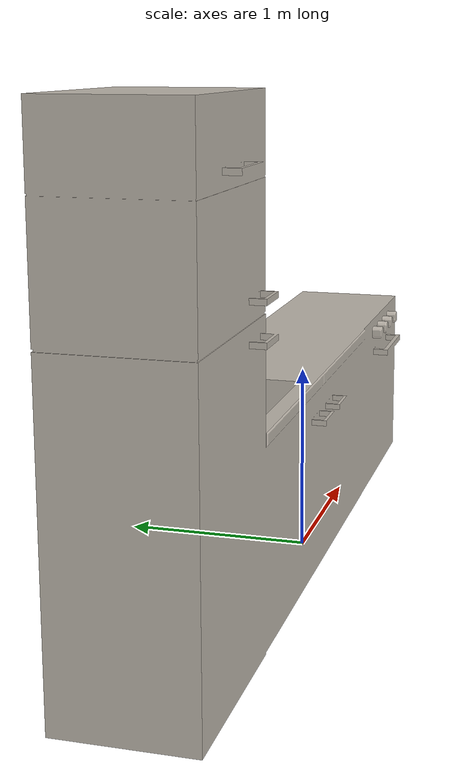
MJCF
<mujoco model="Counters">
  <default>
    <default class="visual">
      <geom group="2" type="mesh" contype="0" conaffinity="0"/>
    </default>
    <default class="collision">
      <geom group="3"/>
    </default>
  </default>
  <asset>
    <texture type="2d" name="texture" file="texture.png"/>
    <material name="Material.004" texture="texture" specular="0.5" shininess="0.25"/>
    <mesh file="Counters.obj"/>
    <mesh file="Counters_coll.obj"/>
  </asset>
  <worldbody>
    <body name="Counters">
      <inertial pos="0 0 0" mass="0.01" diaginertia="0 0 0"/>
      <geom material="Material.004" mesh="Counters" class="visual"/>

      <!-- TODO test SdfLib voxel collision -->
      <body name="Collision">
        <geom type="box" pos="-1.863 0.15 1.27" size="0.471 0.327 1.27" class="collision"/>
        <geom type="box" pos="0.786788 0.15095 0.529469" size="1.24 0.327 0.522" class="collision"/>
        <geom type="box" pos="-1.289 0.15 0.53" size="0.098 0.327 0.522" class="collision"/>
        <geom type="box" pos="-0.822 -0.13 0.53" size="0.376 0.042 0.522" class="collision"/>
        <geom type="box" pos="-0.822 0.4 0.53" size="0.376 0.079 0.522" class="collision"/>
        <geom type="box" pos="-0.822 0.1 0.76" size="0.4 0.216 0.06" class="collision"/>
      </body>

    </body>
  </worldbody>
</mujoco>
